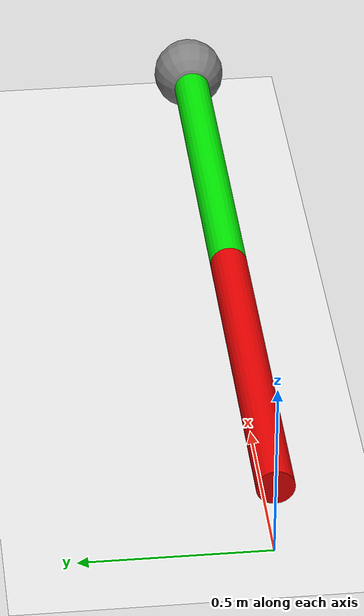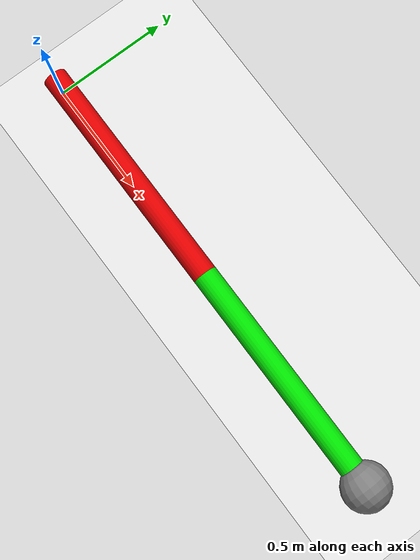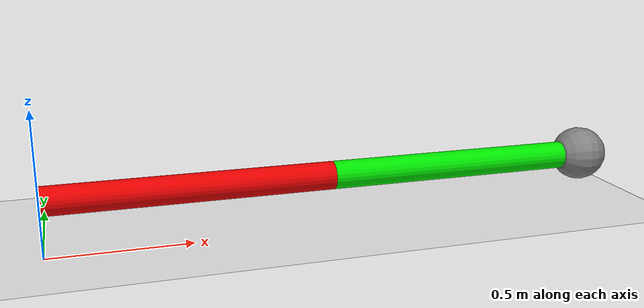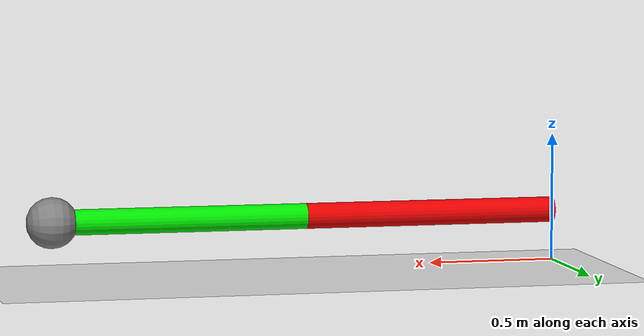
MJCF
<mujoco>
    <option gravity="0 0 0" />
    <worldbody>
        <light diffuse=".5 .5 .5" pos="0 0 10" dir="0 0 -1"/>
        <geom type="plane" size="2.5 2.5 0.1" rgba=".9 .9 .9 1"/>
        <body pos=".5 0 .2" euler="0 90 0">
            <joint type="hinge" axis="-1 0 0" pos="0 0 -.5"/>
            <geom type="cylinder" size=".05 .5" rgba=".9 0 0 1"/>
            <body pos="0 0 1" euler="0 0 0">
                <joint type="hinge" axis="-1 0 0" pos="0 0 -.5"/>
                <geom type="cylinder" size=".05 .5" rgba="0 .9 0 1"/>
                <site name="tip" size=".1" pos="0 0 .5"/>
            </body>
        </body>
    </worldbody>
    <sensor>
        <framepos objtype="site" objname="tip"/>
    </sensor>
</mujoco>
